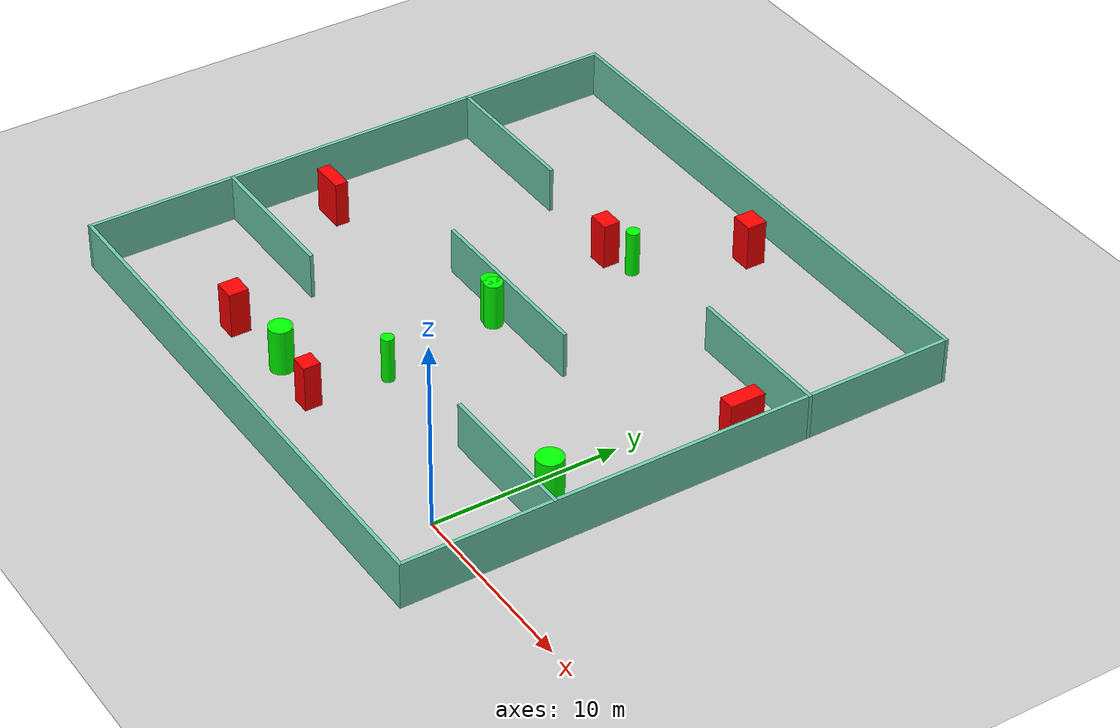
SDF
<sdf version="1.7">
 <world name="default">
  <light name="sun" type="directional">
   <pose>0 0 10 0 -0 0</pose>
   <diffuse>0.8 0.8 0.8 1</diffuse>
   <specular>0.2 0.2 0.2 1</specular>
   <attenuation>
    <range>1000</range>
    <constant>0.9</constant>
    <linear>0.01</linear>
    <quadratic>0.001</quadratic>
   </attenuation>
   <direction>-0.5 0.1 -0.9</direction>
   <spot><inner_angle>0</inner_angle><outer_angle>0</outer_angle><falloff>0</falloff></spot>
  </light>
  <model name="ground_plane">
   <static>1</static>
   <link name="link">
    <collision name="collision">
     <geometry><plane><normal>0 0 1</normal><size>100 100</size></plane></geometry>
     <surface>
      <contact><collide_bitmask>65535</collide_bitmask></contact>
      <friction><ode><mu>100</mu><mu2>50</mu2></ode></friction>
     </surface>
    </collision>
    <visual name="visual">
     <cast_shadows>0</cast_shadows>
     <geometry><plane><normal>0 0 1</normal><size>100 100</size></plane></geometry>
     <material>
      <script><uri>file://media/materials/scripts/gazebo.material</uri><name>Gazebo/Grey</name></script>
     </material>
    </visual>
   </link>
  </model>
  <gravity>0 0 -9.8</gravity>
  <magnetic_field>6e-06 2.3e-05 -4.2e-05</magnetic_field>
  <atmosphere type="adiabatic"/>
  <physics type="ode">
   <max_step_size>0.001</max_step_size>
   <real_time_factor>1</real_time_factor>
   <real_time_update_rate>1000</real_time_update_rate>
  </physics>
  <scene><ambient>0.4 0.4 0.4 1</ambient><background>0.7 0.7 0.7 1</background><shadows>1</shadows></scene>
  <spherical_coordinates>
   <surface_model>EARTH_WGS84</surface_model>
   <latitude_deg>0</latitude_deg>
   <longitude_deg>0</longitude_deg>
   <elevation>0</elevation>
   <heading_deg>0</heading_deg>
  </spherical_coordinates>
  <model name="my_base_walls">
   <link name="Wall_10">
    <collision name="Wall_10_Collision">
     <geometry><box><size>8.2 0.2 2.5</size></box></geometry>
     <pose>0 0 1.25 0 -0 0</pose>
    </collision>
    <visual name="Wall_10_Visual">
     <pose>0 0 1.25 0 -0 0</pose>
     <geometry><box><size>8.2 0.2 2.5</size></box></geometry>
     <material>
      <script><uri>file://media/materials/scripts/gazebo.material</uri><name>Gazebo/Grey</name></script>
      <ambient>0.435294 0.796078 0.67451 1</ambient>
     </material>
     <meta><layer>0</layer></meta>
    </visual>
    <pose>-11 -7 0 0 -0 0</pose>
   </link>
   <link name="Wall_12">
    <collision name="Wall_12_Collision">
     <geometry><box><size>8.2 0.2 2.5</size></box></geometry>
     <pose>0 0 1.25 0 -0 0</pose>
    </collision>
    <visual name="Wall_12_Visual">
     <pose>0 0 1.25 0 -0 0</pose>
     <geometry><box><size>8.2 0.2 2.5</size></box></geometry>
     <material>
      <script><uri>file://media/materials/scripts/gazebo.material</uri><name>Gazebo/Grey</name></script>
      <ambient>0.435294 0.796078 0.67451 1</ambient>
     </material>
     <meta><layer>0</layer></meta>
    </visual>
    <pose>-11 7 0 0 -0 0</pose>
   </link>
   <link name="Wall_14">
    <collision name="Wall_14_Collision">
     <geometry><box><size>8.2 0.2 2.5</size></box></geometry>
     <pose>0 0 1.25 0 -0 0</pose>
    </collision>
    <visual name="Wall_14_Visual">
     <pose>0 0 1.25 0 -0 0</pose>
     <geometry><box><size>8.2 0.2 2.5</size></box></geometry>
     <material>
      <script><uri>file://media/materials/scripts/gazebo.material</uri><name>Gazebo/Grey</name></script>
      <ambient>0.435294 0.796078 0.67451 1</ambient>
     </material>
     <meta><layer>0</layer></meta>
    </visual>
    <pose>11 7 0 0 -0 3.14159</pose>
   </link>
   <link name="Wall_16">
    <collision name="Wall_16_Collision">
     <geometry><box><size>10.2 0.2 2.5</size></box></geometry>
     <pose>0 0 1.25 0 -0 0</pose>
    </collision>
    <visual name="Wall_16_Visual">
     <pose>0 0 1.25 0 -0 0</pose>
     <geometry><box><size>10.2 0.2 2.5</size></box></geometry>
     <material>
      <script><uri>file://media/materials/scripts/gazebo.material</uri><name>Gazebo/Grey</name></script>
      <ambient>0.435294 0.796078 0.67451 1</ambient>
     </material>
     <meta><layer>0</layer></meta>
    </visual>
    <pose>0 0 0 0 -0 3.14159</pose>
   </link>
   <link name="Wall_2">
    <collision name="Wall_2_Collision">
     <geometry><box><size>30.2 0.2 2.5</size></box></geometry>
     <pose>0 0 1.25 0 -0 0</pose>
    </collision>
    <visual name="Wall_2_Visual">
     <pose>0 0 1.25 0 -0 0</pose>
     <geometry><box><size>30.2 0.2 2.5</size></box></geometry>
     <material>
      <script><uri>file://media/materials/scripts/gazebo.material</uri><name>Gazebo/Grey</name></script>
      <ambient>0.435294 0.796078 0.67451 1</ambient>
     </material>
     <meta><layer>0</layer></meta>
    </visual>
    <pose>0 -15 0 0 -0 3.14159</pose>
   </link>
   <link name="Wall_3">
    <collision name="Wall_3_Collision">
     <geometry><box><size>30.2 0.2 2.5</size></box></geometry>
     <pose>0 0 1.25 0 -0 0</pose>
    </collision>
    <visual name="Wall_3_Visual">
     <pose>0 0 1.25 0 -0 0</pose>
     <geometry><box><size>30.2 0.2 2.5</size></box></geometry>
     <material>
      <script><uri>file://media/materials/scripts/gazebo.material</uri><name>Gazebo/Grey</name></script>
      <ambient>0.435294 0.796078 0.67451 1</ambient>
     </material>
     <meta><layer>0</layer></meta>
    </visual>
    <pose>-15 0 0 0 -0 1.5708</pose>
   </link>
   <link name="Wall_4">
    <collision name="Wall_4_Collision">
     <geometry><box><size>30.2 0.2 2.5</size></box></geometry>
     <pose>0 0 1.25 0 -0 0</pose>
    </collision>
    <visual name="Wall_4_Visual">
     <pose>0 0 1.25 0 -0 0</pose>
     <geometry><box><size>30.2 0.2 2.5</size></box></geometry>
     <material>
      <script><uri>file://media/materials/scripts/gazebo.material</uri><name>Gazebo/Grey</name></script>
      <ambient>0.435294 0.796078 0.67451 1</ambient>
     </material>
     <meta><layer>0</layer></meta>
    </visual>
    <pose>0 15 0 0 -0 0</pose>
   </link>
   <link name="Wall_6">
    <collision name="Wall_6_Collision">
     <geometry><box><size>30.2 0.2 2.5</size></box></geometry>
     <pose>0 0 1.25 0 -0 0</pose>
    </collision>
    <visual name="Wall_6_Visual">
     <pose>0 0 1.25 0 -0 0</pose>
     <geometry><box><size>30.2 0.2 2.5</size></box></geometry>
     <material>
      <script><uri>file://media/materials/scripts/gazebo.material</uri><name>Gazebo/Grey</name></script>
      <ambient>0.435294 0.796078 0.67451 1</ambient>
     </material>
     <meta><layer>0</layer></meta>
    </visual>
    <pose>15 0 0 0 -0 1.5708</pose>
   </link>
   <link name="Wall_8">
    <collision name="Wall_8_Collision">
     <geometry><box><size>8.2 0.2 2.5</size></box></geometry>
     <pose>0 0 1.25 0 -0 0</pose>
    </collision>
    <visual name="Wall_8_Visual">
     <pose>0 0 1.25 0 -0 0</pose>
     <geometry><box><size>8.2 0.2 2.5</size></box></geometry>
     <material>
      <script><uri>file://media/materials/scripts/gazebo.material</uri><name>Gazebo/Grey</name></script>
      <ambient>0.435294 0.796078 0.67451 1</ambient>
     </material>
     <meta><layer>0</layer></meta>
    </visual>
    <pose>11 -7 0 0 -0 3.14159</pose>
   </link>
   <static>1</static>
   <pose>-11 11 0 0 -0 0</pose>
  </model>
  <model name="cylinder1">
   <static>1</static>
   <link name="link">
    <inertial>
     <mass>1</mass>
     <inertia><ixx>0.5</ixx><ixy>0</ixy><ixz>0</ixz><iyy>0.5</iyy><iyz>0</iyz><izz>1</izz></inertia>
    </inertial>
    <collision name="collision">
     <geometry><cylinder><radius>0.4725143858643135</radius><length>2.5</length></cylinder></geometry>
    </collision>
    <visual name="visual">
     <geometry><cylinder><radius>0.4725143858643135</radius><length>2.5</length></cylinder></geometry>
     <material>
      <ambient>0 1 0 1</ambient>
      <diffuse>0 1 0 1</diffuse>
      <specular>0.1 0.1 0.1 1</specular>
      <emissive>0 0 0 0</emissive>
     </material>
    </visual>
   </link>
   <pose>-11.652636208486028 10.40467332394715 1.25 0 0 0</pose>
  </model>
  <model name="cylinder2">
   <static>1</static>
   <link name="link">
    <inertial>
     <mass>1</mass>
     <inertia><ixx>0.5</ixx><ixy>0</ixy><ixz>0</ixz><iyy>0.5</iyy><iyz>0</iyz><izz>1</izz></inertia>
    </inertial>
    <collision name="collision">
     <geometry><cylinder><radius>0.6986020216656801</radius><length>2.5</length></cylinder></geometry>
    </collision>
    <visual name="visual">
     <geometry><cylinder><radius>0.6986020216656801</radius><length>2.5</length></cylinder></geometry>
     <material>
      <ambient>0 1 0 1</ambient>
      <diffuse>0 1 0 1</diffuse>
      <specular>0.1 0.1 0.1 1</specular>
      <emissive>0 0 0 0</emissive>
     </material>
    </visual>
   </link>
   <pose>1.3479819909425395 5.44791942336748 1.25 0 0 0</pose>
  </model>
  <model name="cylinder3">
   <static>1</static>
   <link name="link">
    <inertial>
     <mass>1</mass>
     <inertia><ixx>0.5</ixx><ixy>0</ixy><ixz>0</ixz><iyy>0.5</iyy><iyz>0</iyz><izz>1</izz></inertia>
    </inertial>
    <collision name="collision">
     <geometry><cylinder><radius>0.33436519220371264</radius><length>2.5</length></cylinder></geometry>
    </collision>
    <visual name="visual">
     <geometry><cylinder><radius>0.33436519220371264</radius><length>2.5</length></cylinder></geometry>
     <material>
      <ambient>0 1 0 1</ambient>
      <diffuse>0 1 0 1</diffuse>
      <specular>0.1 0.1 0.1 1</specular>
      <emissive>0 0 0 0</emissive>
     </material>
    </visual>
   </link>
   <pose>-10.254340976840533 3.7897510010433884 1.25 0 0 0</pose>
  </model>
  <model name="cylinder4">
   <static>1</static>
   <link name="link">
    <inertial>
     <mass>1</mass>
     <inertia><ixx>0.5</ixx><ixy>0</ixy><ixz>0</ixz><iyy>0.5</iyy><iyz>0</iyz><izz>1</izz></inertia>
    </inertial>
    <collision name="collision">
     <geometry><cylinder><radius>0.4874791236389352</radius><length>2.5</length></cylinder></geometry>
    </collision>
    <visual name="visual">
     <geometry><cylinder><radius>0.4874791236389352</radius><length>2.5</length></cylinder></geometry>
     <material>
      <ambient>0 1 0 1</ambient>
      <diffuse>0 1 0 1</diffuse>
      <specular>0.1 0.1 0.1 1</specular>
      <emissive>0 0 0 0</emissive>
     </material>
    </visual>
   </link>
   <pose>-11.295374455834947 10.364713473452957 1.25 0 0 0</pose>
  </model>
  <model name="cylinder5">
   <static>1</static>
   <link name="link">
    <inertial>
     <mass>1</mass>
     <inertia><ixx>0.5</ixx><ixy>0</ixy><ixz>0</ixz><iyy>0.5</iyy><iyz>0</iyz><izz>1</izz></inertia>
    </inertial>
    <collision name="collision">
     <geometry><cylinder><radius>0.3554485341009107</radius><length>2.5</length></cylinder></geometry>
    </collision>
    <visual name="visual">
     <geometry><cylinder><radius>0.3554485341009107</radius><length>2.5</length></cylinder></geometry>
     <material>
      <ambient>0 1 0 1</ambient>
      <diffuse>0 1 0 1</diffuse>
      <specular>0.1 0.1 0.1 1</specular>
      <emissive>0 0 0 0</emissive>
     </material>
    </visual>
   </link>
   <pose>-11.222489190572713 18.48625234278081 1.25 0 0 0</pose>
  </model>
  <model name="cylinder6">
   <static>1</static>
   <link name="link">
    <inertial>
     <mass>1</mass>
     <inertia><ixx>0.5</ixx><ixy>0</ixy><ixz>0</ixz><iyy>0.5</iyy><iyz>0</iyz><izz>1</izz></inertia>
    </inertial>
    <collision name="collision">
     <geometry><cylinder><radius>0.6207566503538287</radius><length>2.5</length></cylinder></geometry>
    </collision>
    <visual name="visual">
     <geometry><cylinder><radius>0.6207566503538287</radius><length>2.5</length></cylinder></geometry>
     <material>
      <ambient>0 1 0 1</ambient>
      <diffuse>0 1 0 1</diffuse>
      <specular>0.1 0.1 0.1 1</specular>
      <emissive>0 0 0 0</emissive>
     </material>
    </visual>
   </link>
   <pose>-13.727382705708557 -0.06959261337793876 1.25 0 0 0</pose>
  </model>
  <model name="box1">
   <static>1</static>
   <link name="link">
    <inertial>
     <mass>1</mass>
     <inertia><ixx>0.083</ixx><ixy>0</ixy><ixz>0</ixz><iyy>0.083</iyy><iyz>0</iyz><izz>0.083</izz></inertia>
    </inertial>
    <collision name="collision">
     <geometry><box><size>1.1699582900485348 0.9224974699327521 2.5</size></box></geometry>
    </collision>
    <visual name="visual">
     <geometry><box><size>1.1699582900485348 0.9224974699327521 2.5</size></box></geometry>
     <material>
      <ambient>1 0 0 1</ambient>
      <diffuse>1 0 0 1</diffuse>
      <specular>0.1 0.1 0.1 1</specular>
      <emissive>0 0 0 0</emissive>
     </material>
    </visual>
    <sensor name="my_contact" type="contact">
     <contact><collision>box_collision</collision><topic>__default_topic__</topic></contact>
    </sensor>
   </link>
   <pose>-12.824809950213165 17.9206627954748 1.25 0 0 0</pose>
  </model>
  <model name="box2">
   <static>1</static>
   <link name="link">
    <inertial>
     <mass>1</mass>
     <inertia><ixx>0.083</ixx><ixy>0</ixy><ixz>0</ixz><iyy>0.083</iyy><iyz>0</iyz><izz>0.083</izz></inertia>
    </inertial>
    <collision name="collision">
     <geometry><box><size>0.9638024301935848 0.9089481587689268 2.5</size></box></geometry>
    </collision>
    <visual name="visual">
     <geometry><box><size>0.9638024301935848 0.9089481587689268 2.5</size></box></geometry>
     <material>
      <ambient>1 0 0 1</ambient>
      <diffuse>1 0 0 1</diffuse>
      <specular>0.1 0.1 0.1 1</specular>
      <emissive>0 0 0 0</emissive>
     </material>
    </visual>
    <sensor name="my_contact" type="contact">
     <contact><collision>box_collision</collision><topic>__default_topic__</topic></contact>
    </sensor>
   </link>
   <pose>-10.659697884955005 -0.33520439259983315 1.25 0 0 0</pose>
  </model>
  <model name="box3">
   <static>1</static>
   <link name="link">
    <inertial>
     <mass>1</mass>
     <inertia><ixx>0.083</ixx><ixy>0</ixy><ixz>0</ixz><iyy>0.083</iyy><iyz>0</iyz><izz>0.083</izz></inertia>
    </inertial>
    <collision name="collision">
     <geometry><box><size>1.845661207119097 0.7214862688429076 2.5</size></box></geometry>
    </collision>
    <visual name="visual">
     <geometry><box><size>1.845661207119097 0.7214862688429076 2.5</size></box></geometry>
     <material>
      <ambient>1 0 0 1</ambient>
      <diffuse>1 0 0 1</diffuse>
      <specular>0.1 0.1 0.1 1</specular>
      <emissive>0 0 0 0</emissive>
     </material>
    </visual>
    <sensor name="my_contact" type="contact">
     <contact><collision>box_collision</collision><topic>__default_topic__</topic></contact>
    </sensor>
   </link>
   <pose>-23.451119238425512 8.357671984974711 1.25 0 0 0</pose>
  </model>
  <model name="box4">
   <static>1</static>
   <link name="link">
    <inertial>
     <mass>1</mass>
     <inertia><ixx>0.083</ixx><ixy>0</ixy><ixz>0</ixz><iyy>0.083</iyy><iyz>0</iyz><izz>0.083</izz></inertia>
    </inertial>
    <collision name="collision">
     <geometry><box><size>0.8799346354277418 1.9258261776497914 2.5</size></box></geometry>
    </collision>
    <visual name="visual">
     <geometry><box><size>0.8799346354277418 1.9258261776497914 2.5</size></box></geometry>
     <material>
      <ambient>1 0 0 1</ambient>
      <diffuse>1 0 0 1</diffuse>
      <specular>0.1 0.1 0.1 1</specular>
      <emissive>0 0 0 0</emissive>
     </material>
    </visual>
    <sensor name="my_contact" type="contact">
     <contact><collision>box_collision</collision><topic>__default_topic__</topic></contact>
    </sensor>
   </link>
   <pose>2.3827714300773017 15.379666496591462 1.25 0 0 0</pose>
  </model>
  <model name="box5">
   <static>1</static>
   <link name="link">
    <inertial>
     <mass>1</mass>
     <inertia><ixx>0.083</ixx><ixy>0</ixy><ixz>0</ixz><iyy>0.083</iyy><iyz>0</iyz><izz>0.083</izz></inertia>
    </inertial>
    <collision name="collision">
     <geometry><box><size>1.1561332104949973 1.0770656469852953 2.5</size></box></geometry>
    </collision>
    <visual name="visual">
     <geometry><box><size>1.1561332104949973 1.0770656469852953 2.5</size></box></geometry>
     <material>
      <ambient>1 0 0 1</ambient>
      <diffuse>1 0 0 1</diffuse>
      <specular>0.1 0.1 0.1 1</specular>
      <emissive>0 0 0 0</emissive>
     </material>
    </visual>
    <sensor name="my_contact" type="contact">
     <contact><collision>box_collision</collision><topic>__default_topic__</topic></contact>
    </sensor>
   </link>
   <pose>-17.69790664156415 -0.451700607317862 1.25 0 0 0</pose>
  </model>
  <model name="box6">
   <static>1</static>
   <link name="link">
    <inertial>
     <mass>1</mass>
     <inertia><ixx>0.083</ixx><ixy>0</ixy><ixz>0</ixz><iyy>0.083</iyy><iyz>0</iyz><izz>0.083</izz></inertia>
    </inertial>
    <collision name="collision">
     <geometry><box><size>1.209254229903677 1.0784245631729694 2.5</size></box></geometry>
    </collision>
    <visual name="visual">
     <geometry><box><size>1.209254229903677 1.0784245631729694 2.5</size></box></geometry>
     <material>
      <ambient>1 0 0 1</ambient>
      <diffuse>1 0 0 1</diffuse>
      <specular>0.1 0.1 0.1 1</specular>
      <emissive>0 0 0 0</emissive>
     </material>
    </visual>
    <sensor name="my_contact" type="contact">
     <contact><collision>box_collision</collision><topic>__default_topic__</topic></contact>
    </sensor>
   </link>
   <pose>-8.949382687286665 23.983444290004797 1.25 0 0 0</pose>
  </model>
 </world>
</sdf>
